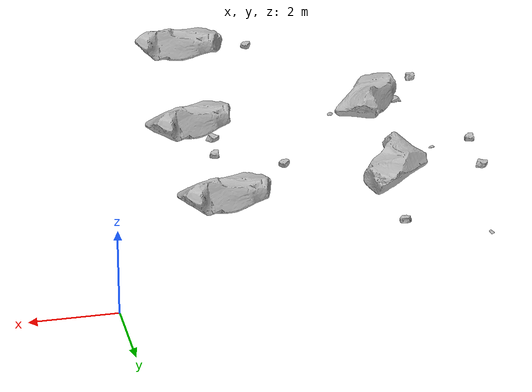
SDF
<sdf version="1.7">
 <world name="marsyard">
  <model name="Rock_7">
   <static>true</static>
   <pose>-8.3287 -8.1786 0.7618 0.0000 0.0000 -2.6987</pose>
   <link name="link">
    <visual name="visual">
     <geometry><mesh><uri>package://rock_generator/rocks_ws/rock_8/meshes/rock_8.obj</uri></mesh></geometry>
    </visual>
    <collision name="collision">
     <geometry><mesh><uri>package://rock_generator/rocks_ws/rock_8/meshes/rock_8.obj</uri></mesh></geometry>
    </collision>
   </link>
  </model>
  <model name="Rock_30">
   <static>true</static>
   <pose>-2.9955 -6.9158 0.9802 0.0000 0.0000 0.4417</pose>
   <link name="link">
    <visual name="visual">
     <geometry><mesh><uri>package://rock_generator/rocks_ws/rock_4/meshes/rock_4.obj</uri></mesh></geometry>
    </visual>
    <collision name="collision">
     <geometry><mesh><uri>package://rock_generator/rocks_ws/rock_4/meshes/rock_4.obj</uri></mesh></geometry>
    </collision>
   </link>
  </model>
  <model name="Rock_54">
   <static>true</static>
   <pose>-6.8638 -2.8098 1.2515 0.0000 0.0000 -2.0571</pose>
   <link name="link">
    <visual name="visual">
     <geometry><mesh><uri>package://rock_generator/rocks_ws/rock_4/meshes/rock_4.obj</uri></mesh></geometry>
    </visual>
    <collision name="collision">
     <geometry><mesh><uri>package://rock_generator/rocks_ws/rock_4/meshes/rock_4.obj</uri></mesh></geometry>
    </collision>
   </link>
  </model>
  <model name="Rock_59">
   <static>true</static>
   <pose>-3.0791 -4.5319 1.3700 0.0000 0.0000 0.3579</pose>
   <link name="link">
    <visual name="visual">
     <geometry><mesh><uri>package://rock_generator/rocks_ws/rock_1/meshes/rock_1.obj</uri></mesh></geometry>
    </visual>
   </link>
  </model>
  <model name="Rock_79">
   <static>true</static>
   <pose>-8.2591 -4.4394 1.1614 0.0000 0.0000 0.6117</pose>
   <link name="link">
    <visual name="visual">
     <geometry><mesh><uri>package://rock_generator/rocks_ws/rock_5/meshes/rock_5.obj</uri></mesh></geometry>
    </visual>
   </link>
  </model>
  <model name="Rock_142">
   <static>true</static>
   <pose>-9.1306 -3.2233 1.1340 0.0000 0.0000 1.7885</pose>
   <link name="link">
    <visual name="visual">
     <geometry><mesh><uri>package://rock_generator/rocks_ws/rock_1/meshes/rock_1.obj</uri></mesh></geometry>
    </visual>
    <collision name="collision">
     <geometry><mesh><uri>package://rock_generator/rocks_ws/rock_1/meshes/rock_1.obj</uri></mesh></geometry>
    </collision>
   </link>
  </model>
  <model name="Rock_180">
   <static>true</static>
   <pose>-3.3271 -10.2437 1.5828 0.0000 0.0000 0.0581</pose>
   <link name="link">
    <visual name="visual">
     <geometry><mesh><uri>package://rock_generator/rocks_ws/rock_4/meshes/rock_4.obj</uri></mesh></geometry>
    </visual>
   </link>
  </model>
  <model name="Rock_213">
   <static>true</static>
   <pose>-2.8128 -1.9458 1.4058 0.0000 0.0000 0.3113</pose>
   <link name="link">
    <visual name="visual">
     <geometry><mesh><uri>package://rock_generator/rocks_ws/rock_4/meshes/rock_4.obj</uri></mesh></geometry>
    </visual>
    <collision name="collision">
     <geometry><mesh><uri>package://rock_generator/rocks_ws/rock_4/meshes/rock_4.obj</uri></mesh></geometry>
    </collision>
   </link>
  </model>
  <model name="Rock_226">
   <static>true</static>
   <pose>-7.4827 -7.3264 1.0118 0.0000 0.0000 1.0673</pose>
   <link name="link">
    <visual name="visual">
     <geometry><mesh><uri>package://rock_generator/rocks_ws/rock_4/meshes/rock_4.obj</uri></mesh></geometry>
    </visual>
   </link>
  </model>
  <model name="Rock_246">
   <static>true</static>
   <pose>-9.2612 -4.6438 1.1404 0.0000 0.0000 0.4199</pose>
   <link name="link">
    <visual name="visual">
     <geometry><mesh><uri>package://rock_generator/rocks_ws/rock_1/meshes/rock_1.obj</uri></mesh></geometry>
    </visual>
   </link>
  </model>
  <model name="Rock_260">
   <static>true</static>
   <pose>-5.1874 -10.8751 1.3217 0.0000 0.0000 -0.0465</pose>
   <link name="link">
    <visual name="visual">
     <geometry><mesh><uri>package://rock_generator/rocks_ws/rock_1/meshes/rock_1.obj</uri></mesh></geometry>
    </visual>
    <collision name="collision">
     <geometry><mesh><uri>package://rock_generator/rocks_ws/rock_1/meshes/rock_1.obj</uri></mesh></geometry>
    </collision>
   </link>
  </model>
  <model name="Rock_262">
   <static>true</static>
   <pose>-3.2717 -5.7311 1.2422 0.0000 0.0000 1.4106</pose>
   <link name="link">
    <visual name="visual">
     <geometry><mesh><uri>package://rock_generator/rocks_ws/rock_1/meshes/rock_1.obj</uri></mesh></geometry>
    </visual>
   </link>
  </model>
  <model name="Rock_273">
   <static>true</static>
   <pose>-6.5041 -0.3682 1.3343 0.0000 0.0000 -1.2033</pose>
   <link name="link">
    <visual name="visual">
     <geometry><mesh><uri>package://rock_generator/rocks_ws/rock_1/meshes/rock_1.obj</uri></mesh></geometry>
    </visual>
   </link>
  </model>
  <model name="Rock_278">
   <static>true</static>
   <pose>-4.5288 -3.6657 1.3895 0.0000 0.0000 -0.2080</pose>
   <link name="link">
    <visual name="visual">
     <geometry><mesh><uri>package://rock_generator/rocks_ws/rock_1/meshes/rock_1.obj</uri></mesh></geometry>
    </visual>
   </link>
  </model>
  <model name="Rock_287">
   <static>true</static>
   <pose>-6.4159 -6.9426 1.0895 0.0000 0.0000 -2.2423</pose>
   <link name="link">
    <visual name="visual">
     <geometry><mesh><uri>package://rock_generator/rocks_ws/rock_5/meshes/rock_5.obj</uri></mesh></geometry>
    </visual>
   </link>
  </model>
  <model name="Rock_289">
   <static>true</static>
   <pose>-8.4347 -0.1078 1.0187 0.0000 0.0000 -1.3059</pose>
   <link name="link">
    <visual name="visual">
     <geometry><mesh><uri>package://rock_generator/rocks_ws/rock_5/meshes/rock_5.obj</uri></mesh></geometry>
    </visual>
    <collision name="collision">
     <geometry><mesh><uri>package://rock_generator/rocks_ws/rock_5/meshes/rock_5.obj</uri></mesh></geometry>
    </collision>
   </link>
  </model>
  <model name="Rock_299">
   <static>true</static>
   <pose>-9.0274 -9.1652 0.8384 0.0000 0.0000 2.2537</pose>
   <link name="link">
    <visual name="visual">
     <geometry><mesh><uri>package://rock_generator/rocks_ws/rock_1/meshes/rock_1.obj</uri></mesh></geometry>
    </visual>
   </link>
  </model>
 </world>
</sdf>
